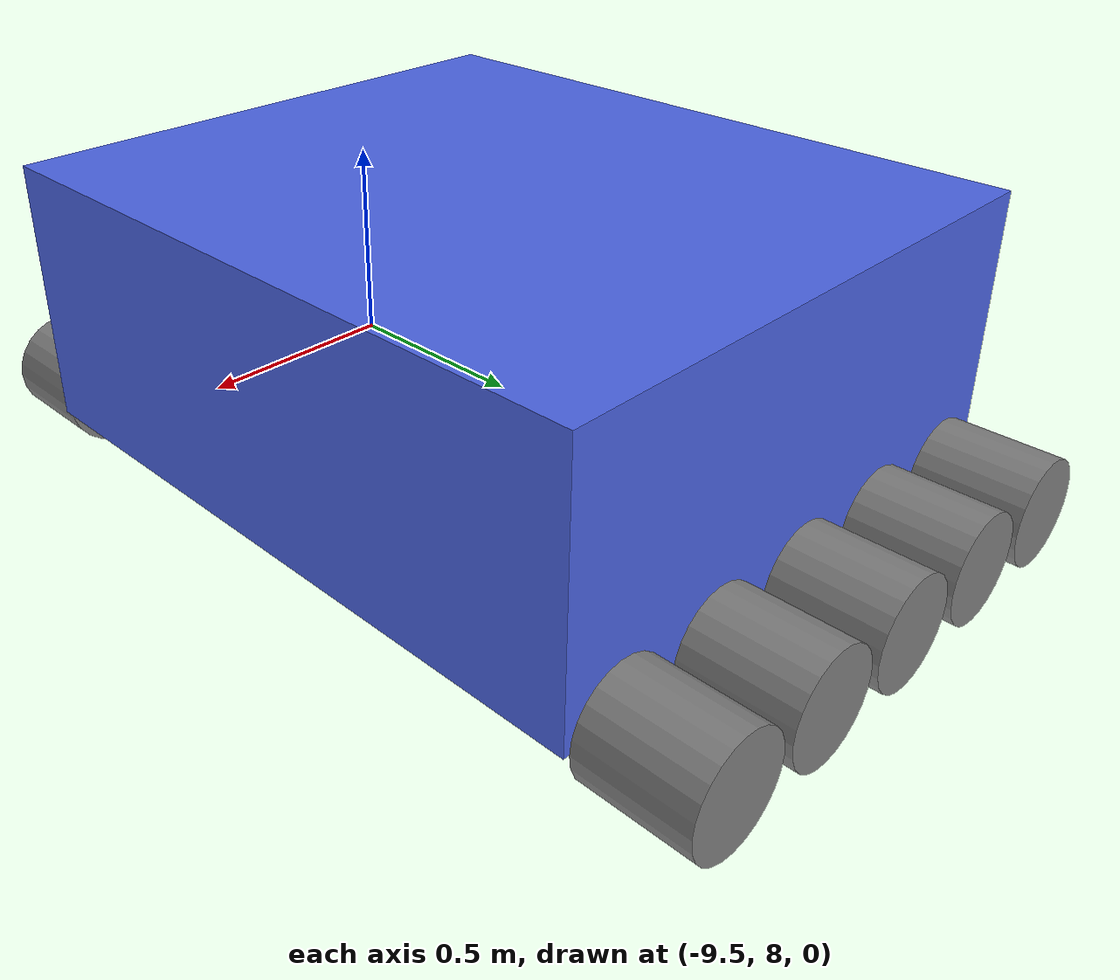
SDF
<sdf version="1.9">
 <world name="agriculture_v3">
  <physics name="1ms" type="ode">
   <max_step_size>0.002</max_step_size>
   <real_time_factor>1</real_time_factor>
   <ode>
    <solver><type>world</type><iters>100</iters></solver>
    <constraints><contact_surface_layer>0.001</contact_surface_layer></constraints>
   </ode>
  </physics>
  <plugin filename="gz-sim-physics-system" name="gz::sim::systems::Physics"/>
  <plugin filename="gz-sim-user-commands-system" name="gz::sim::systems::UserCommands"/>
  <plugin filename="gz-sim-scene-broadcaster-system" name="gz::sim::systems::SceneBroadcaster"/>
  <plugin filename="BasicSystem" name="ros_gz_example_gazebo::BasicSystem"/>
  <plugin filename="FullSystem" name="ros_gz_example_gazebo::FullSystem"/>
  <spherical_coordinates>
   <surface_model>EARTH_WGS84</surface_model>
   <world_frame_orientation>ENU</world_frame_orientation>
   <latitude_deg>37.0</latitude_deg>
   <longitude_deg>127.0</longitude_deg>
   <elevation>0</elevation>
   <heading_deg>0</heading_deg>
  </spherical_coordinates>
  <light type="directional" name="sun">
   <pose>0 0 40 0 0 0</pose>
   <diffuse>0.8 0.8 0.8 1</diffuse>
   <specular>0.2 0.2 0.2 1</specular>
   <attenuation>
    <range>1000</range>
    <constant>0.9</constant>
    <linear>0.01</linear>
    <quadratic>0.001</quadratic>
   </attenuation>
   <direction>-0.5 0.1 -0.9</direction>
  </light>
  <model name="tracked_v3">
   <self_collide>true</self_collide>
   <pose>-9 9 0.2 0 0 0</pose>
   <include merge="true"><uri>package://ros_gz_example_description/models/tracked_v3</uri></include>
   <plugin filename="gz-sim-joint-state-publisher-system" name="gz::sim::systems::JointStatePublisher"/>
   <plugin filename="gz-sim-pose-publisher-system" name="gz::sim::systems::PosePublisher">
    <publish_model_pose>true</publish_model_pose>
    <publish_link_pose>true</publish_link_pose>
    <publish_sensor_pose>true</publish_sensor_pose>
    <use_pose_vector_msg>true</use_pose_vector_msg>
    <update_frequency>1</update_frequency>
    <static_publisher>false</static_publisher>
    <static_update_frequency>1</static_update_frequency>
   </plugin>
   <plugin filename="gz-sim-diff-drive-system" name="gz::sim::systems::DiffDrive">
    <left_joint>wheel_L1_joint</left_joint>
    <right_joint>wheel_R1_joint</right_joint>
    <left_joint>wheel_L2_joint</left_joint>
    <right_joint>wheel_R2_joint</right_joint>
    <left_joint>wheel_L3_joint</left_joint>
    <right_joint>wheel_R3_joint</right_joint>
    <left_joint>wheel_L4_joint</left_joint>
    <right_joint>wheel_R4_joint</right_joint>
    <left_joint>wheel_L5_joint</left_joint>
    <right_joint>wheel_R5_joint</right_joint>
    <wheel_separation>1.5</wheel_separation>
    <wheel_radius>0.10</wheel_radius>
    <topic>/model/tracked_v3/cmd_vel_out</topic>
    <max_linear_acceleration>1</max_linear_acceleration>
    <min_linear_acceleration>-1</min_linear_acceleration>
    <max_angular_acceleration>2</max_angular_acceleration>
    <min_angular_acceleration>-2</min_angular_acceleration>
    <max_linear_velocity>5</max_linear_velocity>
    <min_linear_velocity>-5</min_linear_velocity>
    <max_angular_velocity>50</max_angular_velocity>
    <min_angular_velocity>-50</min_angular_velocity>
    <min_wheel_torque>-40</min_wheel_torque>
    <max_wheel_torque>40</max_wheel_torque>
   </plugin>
   <plugin filename="gz-sim-imu-system" name="gz::sim::systems::Imu"/>
   <plugin filename="gz-sim-navsat-system" name="gz::sim::systems::NavSat"/>
   <plugin filename="gz-sim-magnetometer-system" name="gz::sim::systems::Magnetometer"/>
  </model>
 </world>
</sdf>

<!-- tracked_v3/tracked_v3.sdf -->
<sdf version="1.9">

  <model name="tracked_v3">
    <static>false</static>
    <pose>0 0 0 0 0 0</pose>

    <link name="chassis_link">
      <!-- 차체 중심: 지면에서 0.35m 높이에 배치 (바퀴 반지름 0.1m + 0.15m 여유) -->
      <pose>0 0 0.35 0 0 0</pose>

      <inertial>
          <mass>100.0</mass>
          <!-- 차체 1.1m x 1.3m x 0.5m 기준 관성 모멘트: I = (1/12) * m * (w^2 + h^2) -->
          <inertia>
          <ixx>16.25</ixx> <iyy>12.25</iyy> <izz>28.33</izz>
          <ixy>0.0</ixy> <ixz>0.0</ixz> <iyz>0.0</iyz>
          </inertia>
      </inertial>

      <collision name="chassis_collision">
          <geometry>
          <!-- 차체: 길이 1.1m, 폭 1.3m, 높이 0.5m -->
          <box><size>1.1 1.3 0.5</size></box>
          </geometry>
      </collision>

      <visual name="chassis_visual">
          <geometry>
          <box><size>1.1 1.3 0.5</size></box>
          </geometry>
          <material>
          <ambient>0.3 0.4 0.9 1</ambient>
          <diffuse>0.3 0.4 0.9 1</diffuse>
          </material>
      </visual>

      <sensor name="imu_sensor" type="imu">
          <always_on>true</always_on>
          <update_rate>100</update_rate>
          <visualize>false</visualize>
          <topic>imu</topic>
          <pose>0.1 0 0 0 0 0</pose>

      </sensor>

      <sensor name="navsat_sensor" type="navsat">
        <always_on>true</always_on>
        <update_rate>10.0</update_rate>
        <topic>navsat</topic>
        <visualize>false</visualize>
          <pose>0.1 0 0 0 0 0</pose>
      </sensor>

      <sensor name="magnetometer_sensor" type="magnetometer">
        <always_on>true</always_on>
        <update_rate>100.0</update_rate>
        <topic>magnetometer</topic>
          <pose>0.1 0 0 0 0 0</pose>

      </sensor>

    </link>

    <link name="wheel_R1_link">
        <!-- 전방 우측 바퀴 1: x=0.44m, y=-0.751m (우측 바깥) -->
        <pose>0.44 -0.751 0.1 1.5708 0 0</pose>

      <visual name="wheel_R1_visual">
        <geometry>
          <cylinder>
            <radius>0.1</radius>
            <length>0.2</length>
          </cylinder>
        </geometry>
        <material>
          <ambient>0.5 0.5 0.5 1</ambient>
          <diffuse>0.5 0.5 0.5 1</diffuse>
          <specular>0.1 0.1 0.1 1</specular>
        </material>
      </visual>

      <collision name="wheel_R1_collision">
        <geometry>
          <cylinder>
            <radius>0.1</radius>
            <length>0.2</length>
          </cylinder>
        </geometry>

        <surface>
          <friction>
            <ode>
              <mu>1.2</mu>
              <mu2>0.7</mu2>
              <fdir1>1 0 0</fdir1>
              <slip1>0.0</slip1>
              <slip2>0.001</slip2>
            </ode>
          </friction>
          <contact>
            <ode>
              <soft_cfm>0.002</soft_cfm>
              <soft_erp>0.002</soft_erp>
              <kp>1000</kp>
              <kd>500</kd>
            </ode>
          </contact>
        </surface>
      </collision>

      <inertial>
        <mass>5.0</mass>
        <inertia>
          <ixx>0.0365</ixx>
          <iyy>0.0365</iyy>
          <izz>0.025</izz>
          <ixy>0</ixy>
          <ixz>0</ixz>
          <iyz>0</iyz>
        </inertia>
      </inertial>
    </link>

    <joint name="wheel_R1_joint" type="revolute">
      <parent>chassis_link</parent>
      <child>wheel_R1_link</child>

      <pose>0 0 0 0 0 0</pose>

      <axis>
        <xyz>0 0 -1</xyz>

        <limit>
          <lower>-1.79769e+308</lower>
          <upper>1.79769e+308</upper>
          <effort>10000.0</effort>
          <velocity>10000.0</velocity>
        </limit>

        <dynamics>
          <damping>0.1</damping>
          <friction>0.01</friction>
        </dynamics>
      </axis>

      <physics>
        <provide_feedback>true</provide_feedback>
      </physics>

    </joint>

    <link name="wheel_R2_link">
        <!-- 우측 바퀴 2: x=0.22m -->
        <pose>0.22 -0.751 0.1 1.5708 0 0</pose>

      <visual name="wheel_R2_visual">
        <geometry>
          <cylinder>
            <radius>0.1</radius>
            <length>0.2</length>
          </cylinder>
        </geometry>
        <material>
          <ambient>0.5 0.5 0.5 1</ambient>
          <diffuse>0.5 0.5 0.5 1</diffuse>
          <specular>0.1 0.1 0.1 1</specular>
        </material>
      </visual>

      <collision name="wheel_R2_collision">
        <geometry>
          <cylinder>
            <radius>0.1</radius>
            <length>0.2</length>
          </cylinder>
        </geometry>

        <surface>
          <friction>
            <ode>
              <mu>1.2</mu>
              <mu2>0.7</mu2>
              <fdir1>1 0 0</fdir1>
              <slip1>0.0</slip1>
              <slip2>0.001</slip2>
            </ode>
          </friction>
          <contact>
            <ode>
              <soft_cfm>0.002</soft_cfm>
              <soft_erp>0.002</soft_erp>
              <kp>1000</kp>
              <kd>500</kd>
            </ode>
          </contact>
        </surface>
      </collision>

      <inertial>
        <mass>5.0</mass>
        <inertia>
          <ixx>0.0365</ixx>
          <iyy>0.0365</iyy>
          <izz>0.025</izz>
          <ixy>0</ixy>
          <ixz>0</ixz>
          <iyz>0</iyz>
        </inertia>
      </inertial>
    </link>

    <joint name="wheel_R2_joint" type="revolute">
      <parent>chassis_link</parent>
      <child>wheel_R2_link</child>

      <pose>0 0 0 0 0 0</pose>

      <axis>
        <xyz>0 0 -1</xyz>

        <limit>
          <lower>-1.79769e+308</lower>
          <upper>1.79769e+308</upper>
          <effort>10000.0</effort>
          <velocity>10000.0</velocity>
        </limit>

        <dynamics>
          <damping>0.1</damping>
          <friction>0.01</friction>
        </dynamics>
      </axis>

      <physics>
        <provide_feedback>true</provide_feedback>
      </physics>

    </joint>

    <link name="wheel_R3_link">
        <!-- 우측 바퀴 3: x=0m (중앙) -->
        <pose>0 -0.751 0.1 1.5708 0 0</pose>

            <visual name="wheel_R3_visual">
        <geometry>
          <cylinder>
            <radius>0.1</radius>
            <length>0.2</length>
          </cylinder>
        </geometry>
        <material>
          <ambient>0.5 0.5 0.5 1</ambient>
          <diffuse>0.5 0.5 0.5 1</diffuse>
          <specular>0.1 0.1 0.1 1</specular>
        </material>
      </visual>

      <collision name="wheel_R3_collision">
        <geometry>
          <cylinder>
            <radius>0.1</radius>
            <length>0.2</length>
          </cylinder>
        </geometry>

        <surface>
          <friction>
            <ode>
              <mu>1.2</mu>
              <mu2>0.7</mu2>
              <fdir1>1 0 0</fdir1>
              <slip1>0.0</slip1>
              <slip2>0.001</slip2>
            </ode>
          </friction>
          <contact>
            <ode>
              <soft_cfm>0.002</soft_cfm>
              <soft_erp>0.002</soft_erp>
              <kp>1000</kp>
              <kd>500</kd>
            </ode>
          </contact>
        </surface>
      </collision>

      <inertial>
        <mass>5.0</mass>
        <inertia>
          <ixx>0.0365</ixx>
          <iyy>0.0365</iyy>
          <izz>0.025</izz>
          <ixy>0</ixy>
          <ixz>0</ixz>
          <iyz>0</iyz>
        </inertia>
      </inertial>
    </link>

    <joint name="wheel_R3_joint" type="revolute">
      <parent>chassis_link</parent>
      <child>wheel_R3_link</child>

      <pose>0 0 0 0 0 0</pose>

      <axis>
        <xyz>0 0 -1</xyz>

        <limit>
          <lower>-1.79769e+308</lower>
          <upper>1.79769e+308</upper>
          <effort>10000.0</effort>
          <velocity>10000.0</velocity>
        </limit>

        <dynamics>
          <damping>0.1</damping>
          <friction>0.01</friction>
        </dynamics>
      </axis>

      <physics>
        <provide_feedback>true</provide_feedback>
      </physics>

    </joint>

    <link name="wheel_R4_link">
        <!-- 우측 바퀴 4: x=-0.22m -->
        <pose>-0.22 -0.751 0.1 1.5708 0 0</pose>

      <visual name="wheel_R4_visual">
        <geometry>
          <cylinder>
            <radius>0.1</radius>
            <length>0.2</length>
          </cylinder>
        </geometry>
        <material>
          <ambient>0.5 0.5 0.5 1</ambient>
          <diffuse>0.5 0.5 0.5 1</diffuse>
          <specular>0.1 0.1 0.1 1</specular>
        </material>
      </visual>

      <collision name="wheel_R4_collision">
        <geometry>
          <cylinder>
            <radius>0.1</radius>
            <length>0.2</length>
          </cylinder>
        </geometry>

        <surface>
          <friction>
            <ode>
              <mu>1.2</mu>
              <mu2>0.7</mu2>
              <fdir1>1 0 0</fdir1>
              <slip1>0.0</slip1>
              <slip2>0.001</slip2>
            </ode>
          </friction>
          <contact>
            <ode>
              <soft_cfm>0.002</soft_cfm>
              <soft_erp>0.002</soft_erp>
              <kp>1000</kp>
              <kd>500</kd>
            </ode>
          </contact>
        </surface>
      </collision>

      <inertial>
        <mass>5.0</mass>
        <inertia>
          <ixx>0.0365</ixx>
          <iyy>0.0365</iyy>
          <izz>0.025</izz>
          <ixy>0</ixy>
          <ixz>0</ixz>
          <iyz>0</iyz>
        </inertia>
      </inertial>
    </link>

    <joint name="wheel_R4_joint" type="revolute">
      <parent>chassis_link</parent>
      <child>wheel_R4_link</child>

      <pose>0 0 0 0 0 0</pose>

      <axis>
        <xyz>0 0 -1</xyz>

        <limit>
          <lower>-1.79769e+308</lower>
          <upper>1.79769e+308</upper>
          <effort>10000.0</effort>
          <velocity>10000.0</velocity>
        </limit>

        <dynamics>
          <damping>0.1</damping>
          <friction>0.01</friction>
        </dynamics>
      </axis>

      <physics>
        <provide_feedback>true</provide_feedback>
      </physics>

    </joint>

    <link name="wheel_R5_link">
        <!-- 후방 우측 바퀴 5: x=-0.44m (후방) -->
        <pose>-0.44 -0.751 0.1 1.5708 0 0</pose>

      <visual name="wheel_R5_visual">
        <geometry>
          <cylinder>
            <radius>0.1</radius>
            <length>0.2</length>
          </cylinder>
        </geometry>
        <material>
          <ambient>0.5 0.5 0.5 1</ambient>
          <diffuse>0.5 0.5 0.5 1</diffuse>
          <specular>0.1 0.1 0.1 1</specular>
        </material>
      </visual>

      <collision name="wheel_R5_collision">
        <geometry>
          <cylinder>
            <radius>0.1</radius>
            <length>0.2</length>
          </cylinder>
        </geometry>

        <surface>
          <friction>
            <ode>
              <mu>1.2</mu>
              <mu2>0.7</mu2>
              <fdir1>1 0 0</fdir1>
              <slip1>0.0</slip1>
              <slip2>0.001</slip2>
            </ode>
          </friction>
          <contact>
            <ode>
              <soft_cfm>0.002</soft_cfm>
              <soft_erp>0.002</soft_erp>
              <kp>1000</kp>
              <kd>500</kd>
            </ode>
          </contact>
        </surface>
      </collision>

      <inertial>
        <mass>5.0</mass>
        <inertia>
          <ixx>0.0365</ixx>
          <iyy>0.0365</iyy>
          <izz>0.025</izz>
          <ixy>0</ixy>
          <ixz>0</ixz>
          <iyz>0</iyz>
        </inertia>
      </inertial>
    </link>

    <joint name="wheel_R5_joint" type="revolute">
      <parent>chassis_link</parent>
      <child>wheel_R5_link</child>

      <pose>0 0 0 0 0 0</pose>

      <axis>
        <xyz>0 0 -1</xyz>

        <limit>
          <lower>-1.79769e+308</lower>
          <upper>1.79769e+308</upper>
          <effort>10000.0</effort>
          <velocity>10000.0</velocity>
        </limit>

        <dynamics>
          <damping>0.1</damping>
          <friction>0.01</friction>
        </dynamics>
      </axis>

      <physics>
        <provide_feedback>true</provide_feedback>
      </physics>

    </joint>

    <link name="wheel_L1_link">
        <!-- 전방 좌측 바퀴 1: x=0.44m (전방), y=0.751m (좌측 바깥) -->
        <pose>0.44 0.751 0.1 1.5708 0 0</pose>

      <visual name="wheel_L1_visual">
        <geometry>
          <cylinder>
            <radius>0.1</radius>
            <length>0.2</length>
          </cylinder>
        </geometry>
        <material>
          <ambient>0.5 0.5 0.5 1</ambient>
          <diffuse>0.5 0.5 0.5 1</diffuse>
          <specular>0.1 0.1 0.1 1</specular>
        </material>
      </visual>

      <collision name="wheel_L1_collision">
        <geometry>
          <cylinder>
            <radius>0.1</radius>
            <length>0.2</length>
          </cylinder>
        </geometry>

        <surface>
          <friction>
            <ode>
              <mu>1.2</mu>
              <mu2>0.7</mu2>
              <fdir1>1 0 0</fdir1>
              <slip1>0.0</slip1>
              <slip2>0.001</slip2>
            </ode>
          </friction>
          <contact>
            <ode>
              <soft_cfm>0.002</soft_cfm>
              <soft_erp>0.002</soft_erp>
              <kp>1000</kp>
              <kd>500</kd>
            </ode>
          </contact>
        </surface>
      </collision>

      <inertial>
        <mass>5.0</mass>
        <inertia>
          <ixx>0.0365</ixx>
          <iyy>0.0365</iyy>
          <izz>0.025</izz>
          <ixy>0</ixy>
          <ixz>0</ixz>
          <iyz>0</iyz>
        </inertia>
      </inertial>
    </link>

    <joint name="wheel_L1_joint" type="revolute">
      <parent>chassis_link</parent>
      <child>wheel_L1_link</child>

      <pose>0 0 0 0 0 0</pose>

      <axis>
        <xyz>0 0 -1</xyz>

        <limit>
          <lower>-1.79769e+308</lower>
          <upper>1.79769e+308</upper>
          <effort>10000.0</effort>
          <velocity>10000.0</velocity>
        </limit>

        <dynamics>
          <damping>0.1</damping>
          <friction>0.01</friction>
        </dynamics>
      </axis>

      <physics>
        <provide_feedback>true</provide_feedback>
      </physics>

    </joint>

    <link name="wheel_L2_link">
        <!-- 좌측 바퀴 2: x=0.22m -->
        <pose>0.22 0.751 0.1 1.5708 0 0</pose>

      <visual name="wheel_L2_visual">
        <geometry>
          <cylinder>
            <radius>0.1</radius>
            <length>0.2</length>
          </cylinder>
        </geometry>
        <material>
          <ambient>0.5 0.5 0.5 1</ambient>
          <diffuse>0.5 0.5 0.5 1</diffuse>
          <specular>0.1 0.1 0.1 1</specular>
        </material>
      </visual>

      <collision name="wheel_L2_collision">
        <geometry>
          <cylinder>
            <radius>0.1</radius>
            <length>0.2</length>
          </cylinder>
        </geometry>

        <surface>
          <friction>
            <ode>
              <mu>1.2</mu>
              <mu2>0.7</mu2>
              <fdir1>1 0 0</fdir1>
              <slip1>0.0</slip1>
              <slip2>0.001</slip2>
            </ode>
          </friction>
          <contact>
            <ode>
              <soft_cfm>0.002</soft_cfm>
              <soft_erp>0.002</soft_erp>
              <kp>1000</kp>
              <kd>500</kd>
            </ode>
          </contact>
        </surface>
      </collision>

      <inertial>
        <mass>5.0</mass>
        <inertia>
          <ixx>0.0365</ixx>
          <iyy>0.0365</iyy>
          <izz>0.025</izz>
          <ixy>0</ixy>
          <ixz>0</ixz>
          <iyz>0</iyz>
        </inertia>
      </inertial>
    </link>

    <joint name="wheel_L2_joint" type="revolute">
      <parent>chassis_link</parent>
      <child>wheel_L2_link</child>

      <pose>0 0 0 0 0 0</pose>

      <axis>
        <xyz>0 0 -1</xyz>

        <limit>
          <lower>-1.79769e+308</lower>
          <upper>1.79769e+308</upper>
          <effort>10000.0</effort>
          <velocity>10000.0</velocity>
        </limit>

        <dynamics>
          <damping>0.1</damping>
          <friction>0.01</friction>
        </dynamics>
      </axis>

      <physics>
        <provide_feedback>true</provide_feedback>
      </physics>

    </joint>

    <link name="wheel_L3_link">
        <!-- 좌측 바퀴 3: x=0m (중앙) -->
        <pose>0 0.751 0.1 1.5708 0 0</pose>

            <visual name="wheel_L3_visual">
        <geometry>
          <cylinder>
            <radius>0.1</radius>
            <length>0.2</length>
          </cylinder>
        </geometry>
        <material>
          <ambient>0.5 0.5 0.5 1</ambient>
          <diffuse>0.5 0.5 0.5 1</diffuse>
          <specular>0.1 0.1 0.1 1</specular>
        </material>
      </visual>

      <collision name="wheel_L3_collision">
        <geometry>
          <cylinder>
            <radius>0.1</radius>
            <length>0.2</length>
          </cylinder>
        </geometry>

        <surface>
          <friction>
            <ode>
              <mu>1.2</mu>
              <mu2>0.7</mu2>
              <fdir1>1 0 0</fdir1>
              <slip1>0.0</slip1>
              <slip2>0.001</slip2>
            </ode>
          </friction>
          <contact>
            <ode>
              <soft_cfm>0.002</soft_cfm>
              <soft_erp>0.002</soft_erp>
              <kp>1000</kp>
              <kd>500</kd>
            </ode>
          </contact>
        </surface>
      </collision>

      <inertial>
        <mass>5.0</mass>
        <inertia>
          <ixx>0.0365</ixx>
          <iyy>0.0365</iyy>
          <izz>0.025</izz>
          <ixy>0</ixy>
          <ixz>0</ixz>
          <iyz>0</iyz>
        </inertia>
      </inertial>
    </link>

    <joint name="wheel_L3_joint" type="revolute">
      <parent>chassis_link</parent>
      <child>wheel_L3_link</child>

      <pose>0 0 0 0 0 0</pose>

      <axis>
        <xyz>0 0 -1</xyz>

        <limit>
          <lower>-1.79769e+308</lower>
          <upper>1.79769e+308</upper>
          <effort>10000.0</effort>
          <velocity>10000.0</velocity>
        </limit>

        <dynamics>
          <damping>0.1</damping>
          <friction>0.01</friction>
        </dynamics>
      </axis>

      <physics>
        <provide_feedback>true</provide_feedback>
      </physics>

    </joint>

    <link name="wheel_L4_link">
        <!-- 좌측 바퀴 4: x=-0.22m -->
        <pose>-0.22 0.751 0.1 1.5708 0 0</pose>

            <visual name="wheel_L4_visual">
        <geometry>
          <cylinder>
            <radius>0.1</radius>
            <length>0.2</length>
          </cylinder>
        </geometry>
        <material>
          <ambient>0.5 0.5 0.5 1</ambient>
          <diffuse>0.5 0.5 0.5 1</diffuse>
          <specular>0.1 0.1 0.1 1</specular>
        </material>
      </visual>

      <collision name="wheel_L4_collision">
        <geometry>
          <cylinder>
            <radius>0.1</radius>
            <length>0.2</length>
          </cylinder>
        </geometry>

        <surface>
          <friction>
            <ode>
              <mu>1.2</mu>
              <mu2>0.7</mu2>
              <fdir1>1 0 0</fdir1>
              <slip1>0.0</slip1>
              <slip2>0.001</slip2>
            </ode>
          </friction>
          <contact>
            <ode>
              <soft_cfm>0.002</soft_cfm>
              <soft_erp>0.002</soft_erp>
              <kp>1000</kp>
              <kd>500</kd>
            </ode>
          </contact>
        </surface>
      </collision>

      <inertial>
        <mass>5.0</mass>
        <inertia>
          <ixx>0.0365</ixx>
          <iyy>0.0365</iyy>
          <izz>0.025</izz>
          <ixy>0</ixy>
          <ixz>0</ixz>
          <iyz>0</iyz>
        </inertia>
      </inertial>
    </link>

    <joint name="wheel_L4_joint" type="revolute">
      <parent>chassis_link</parent>
      <child>wheel_L4_link</child>

      <pose>0 0 0 0 0 0</pose>

      <axis>
        <xyz>0 0 -1</xyz>

        <limit>
          <lower>-1.79769e+308</lower>
          <upper>1.79769e+308</upper>
          <effort>10000.0</effort>
          <velocity>10000.0</velocity>
        </limit>

        <dynamics>
          <damping>0.1</damping>
          <friction>0.01</friction>
        </dynamics>
      </axis>

      <physics>
        <provide_feedback>true</provide_feedback>
      </physics>

    </joint>

    <link name="wheel_L5_link">
        <!-- 후방 좌측 바퀴 5: x=-0.44m (후방) -->
        <pose>-0.44 0.751 0.1 1.5708 0 0</pose>

      <visual name="wheel_L5_visual">
        <geometry>
          <cylinder>
            <radius>0.1</radius>
            <length>0.2</length>
          </cylinder>
        </geometry>
        <material>
          <ambient>0.5 0.5 0.5 1</ambient>
          <diffuse>0.5 0.5 0.5 1</diffuse>
          <specular>0.1 0.1 0.1 1</specular>
        </material>
      </visual>

      <collision name="wheel_L5_collision">
        <geometry>
          <cylinder>
            <radius>0.1</radius>
            <length>0.2</length>
          </cylinder>
        </geometry>

        <surface>
          <friction>
            <ode>
              <mu>1.2</mu>
              <mu2>0.7</mu2>
              <fdir1>1 0 0</fdir1>
              <slip1>0.0</slip1>
              <slip2>0.001</slip2>
            </ode>
          </friction>
          <contact>
            <ode>
              <soft_cfm>0.002</soft_cfm>
              <soft_erp>0.002</soft_erp>
              <kp>1000</kp>
              <kd>500</kd>
            </ode>
          </contact>
        </surface>
      </collision>

      <inertial>
        <mass>5.0</mass>
        <inertia>
          <ixx>0.0365</ixx>
          <iyy>0.0365</iyy>
          <izz>0.025</izz>
          <ixy>0</ixy>
          <ixz>0</ixz>
          <iyz>0</iyz>
        </inertia>
      </inertial>
    </link>

    <joint name="wheel_L5_joint" type="revolute">
      <parent>chassis_link</parent>
      <child>wheel_L5_link</child>

      <pose>0 0 0 0 0 0</pose>

      <axis>
        <xyz>0 0 -1</xyz>

        <limit>
          <lower>-1.79769e+308</lower>
          <upper>1.79769e+308</upper>
          <effort>10000.0</effort>
          <velocity>10000.0</velocity>
        </limit>

        <dynamics>
          <damping>0.1</damping>
          <friction>0.01</friction>
        </dynamics>
      </axis>

      <physics>
        <provide_feedback>true</provide_feedback>
      </physics>

    </joint>

  </model>
</sdf>
